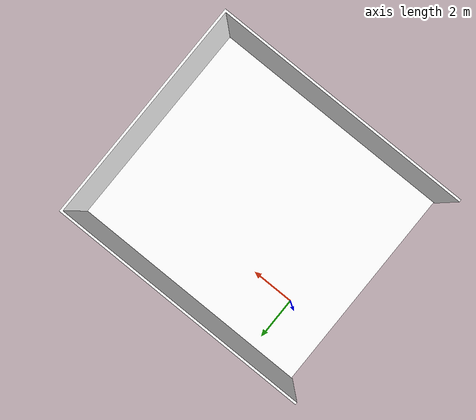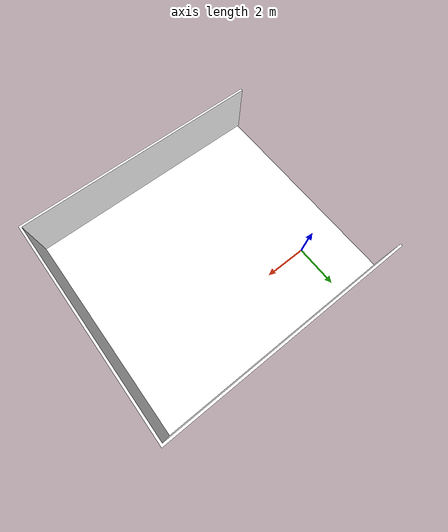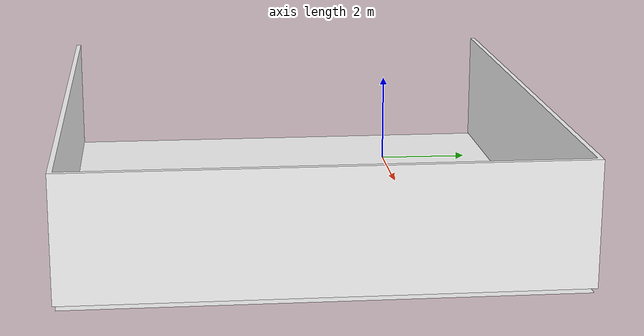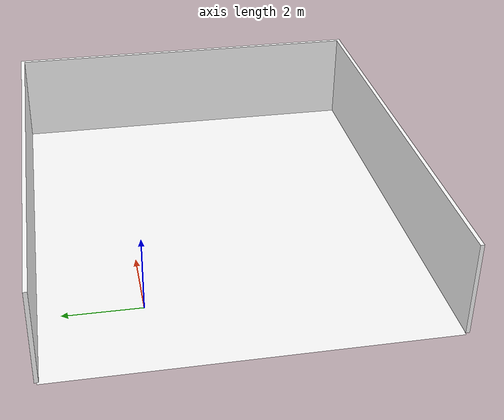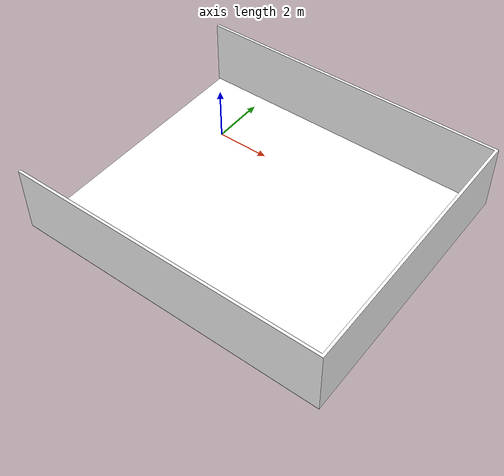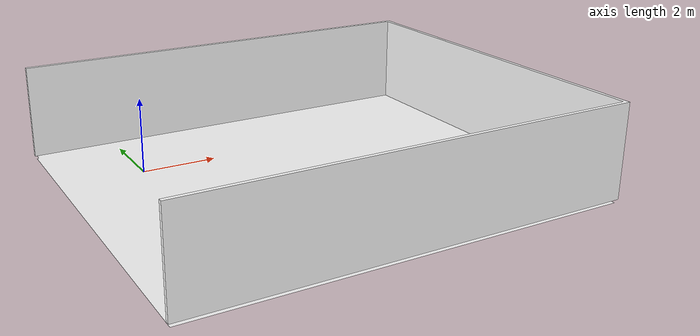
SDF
<sdf version="1.7">
  <world name="world">
    <scene>
      <ambient>0.8 0.8 0.8 1.0</ambient>
      <background>0 0 0</background>
      <grid>false</grid>
    </scene>
    <include>
      <uri>model://sun</uri>
    </include>
    <gui>
      <camera name="gui_camera">
        <pose>3.6412094939472155 -22.378015345742497 10 0 0.6 1.57</pose>
      </camera>
      <plugin name="toggle_charging" filename="libtoggle_charging.so" />
      <plugin name="toggle_floors" filename="libtoggle_floors.so">
        <floor name="L1" model_name="suntech_5x5_L1" />
      </plugin>
    </gui>
    <include>
      <name>suntech_5x5_L1</name>
      <uri>model://suntech_5x5_L1</uri>
      <pose>0 0 0.0 0 0 0</pose>
    </include>
    <rmf_charger_waypoints name="charger_waypoints">
      <rmf_vertex name="n24" x="4.908049478085959" y="-3.769542918825036" level="L1" />
    </rmf_charger_waypoints>
  </world>
</sdf>

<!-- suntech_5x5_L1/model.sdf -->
<sdf version="1.7">
  <model name="suntech_5x5_L1">
    <static>true</static>
    <link name="floor_1">
      <visual name="visual">
        <geometry>
          <mesh>
            <uri>model://suntech_5x5_L1/meshes/floor_1.obj</uri>
          </mesh>
        </geometry>
        <material>
          <diffuse>1.0 1.0 1.0</diffuse>
          <specular>0.1 0.1 0.1</specular>
          <pbr>
            <metal>
              <metalness>0.0</metalness>
              <albedo_map>model://suntech_5x5_L1/meshes/blue_linoleum.png</albedo_map>
            </metal>
          </pbr>
          <script>
            <uri>model://suntech_5x5_L1/meshes/</uri>
            <name>floor_1_Diffuse</name>
          </script>
        </material>
      </visual>
      <collision name="collision">
        <geometry>
          <mesh>
            <uri>model://suntech_5x5_L1/meshes/floor_1.obj</uri>
          </mesh>
        </geometry>
        <surface>
          <contact>
            <collide_bitmask>0x01</collide_bitmask>
          </contact>
        </surface>
      </collision>
    </link>
    <link name="wall_1">
      <visual name="wall_1">
        <geometry>
          <mesh>
            <uri>model://suntech_5x5_L1/meshes/wall_1.obj</uri>
          </mesh>
        </geometry>
        <material>
          <diffuse>1.0 1.0 1.0</diffuse>
          <specular>0.1 0.1 0.1</specular>
          <pbr>
            <metal>
              <metalness>0.0</metalness>
              <albedo_map>model://suntech_5x5_L1/meshes/default.png</albedo_map>
            </metal>
          </pbr>
          <script>
            <uri>model://suntech_5x5_L1/meshes/</uri>
            <name>wall_1_Diffuse</name>
          </script>
        </material>
      </visual>
      <collision name="collision">
        <geometry>
          <mesh>
            <uri>model://suntech_5x5_L1/meshes/wall_1.obj</uri>
          </mesh>
        </geometry>
        <surface>
          <contact>
            <collide_bitmask>0x01</collide_bitmask>
          </contact>
        </surface>
      </collision>
      <pose>-2.211553266045562 -7.428020348940618 0 0 0 0</pose>
    </link>
  </model>
</sdf>
